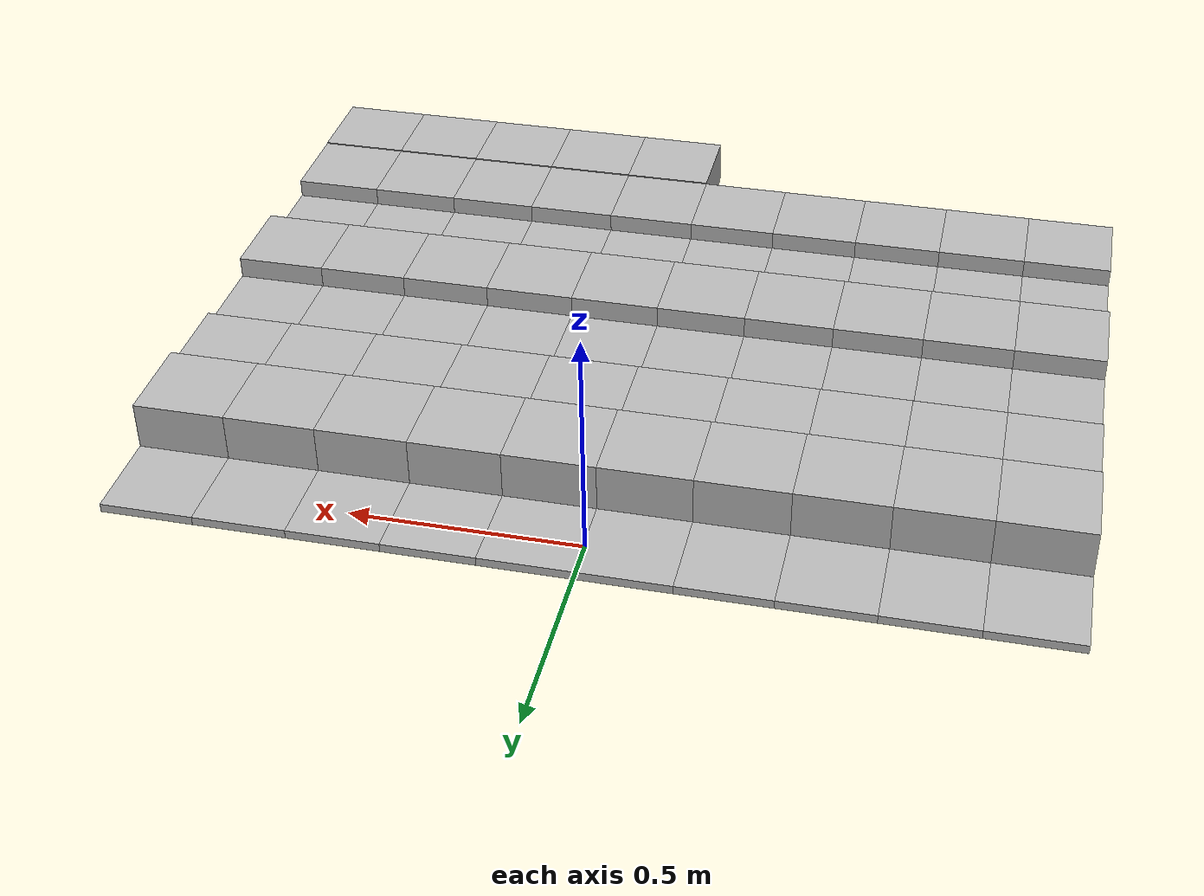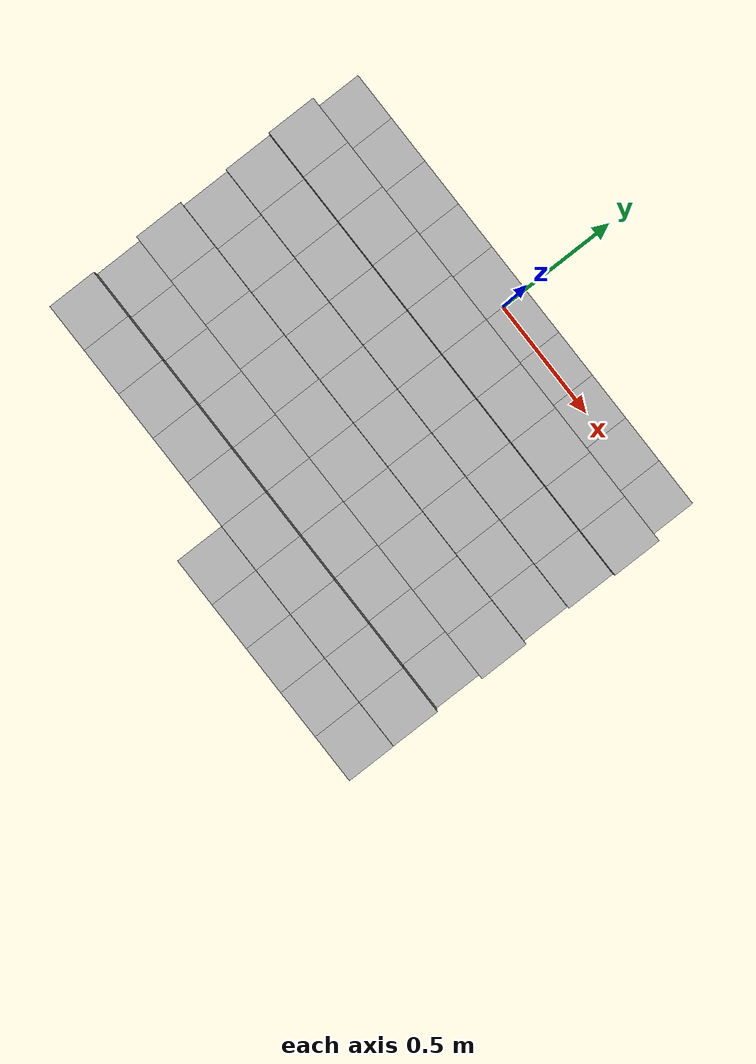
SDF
<sdf version="1.6">
 <model name="Terrain">
  <static>true</static>
  <link name="box_0_0">
   <pose>-0.9 0.0 0.00955770491962 0 0 0</pose>
   <inertial>
    <mass>1.0</mass>
    <inertia><ixx>0.0</ixx><ixy>0.0</ixy><ixz>0.0</ixz><iyy>0.0</iyy><iyz>0.0</iyz><izz>0.0</izz></inertia>
   </inertial>
   <collision name="collision"><geometry><box><size>0.2 0.2 0.0191154098392</size></box></geometry></collision>
   <visual name="visual"><geometry><box><size>0.2 0.2 0.0191154098392</size></box></geometry></visual>
  </link>
  <link name="box_0_1">
   <pose>-0.7 0.0 0.00955770491962 0 0 0</pose>
   <inertial>
    <mass>1.0</mass>
    <inertia><ixx>0.0</ixx><ixy>0.0</ixy><ixz>0.0</ixz><iyy>0.0</iyy><iyz>0.0</iyz><izz>0.0</izz></inertia>
   </inertial>
   <collision name="collision"><geometry><box><size>0.2 0.2 0.0191154098392</size></box></geometry></collision>
   <visual name="visual"><geometry><box><size>0.2 0.2 0.0191154098392</size></box></geometry></visual>
  </link>
  <link name="box_0_2">
   <pose>-0.5 0.0 0.00955770491962 0 0 0</pose>
   <inertial>
    <mass>1.0</mass>
    <inertia><ixx>0.0</ixx><ixy>0.0</ixy><ixz>0.0</ixz><iyy>0.0</iyy><iyz>0.0</iyz><izz>0.0</izz></inertia>
   </inertial>
   <collision name="collision"><geometry><box><size>0.2 0.2 0.0191154098392</size></box></geometry></collision>
   <visual name="visual"><geometry><box><size>0.2 0.2 0.0191154098392</size></box></geometry></visual>
  </link>
  <link name="box_0_3">
   <pose>-0.3 0.0 0.00955770491962 0 0 0</pose>
   <inertial>
    <mass>1.0</mass>
    <inertia><ixx>0.0</ixx><ixy>0.0</ixy><ixz>0.0</ixz><iyy>0.0</iyy><iyz>0.0</iyz><izz>0.0</izz></inertia>
   </inertial>
   <collision name="collision"><geometry><box><size>0.2 0.2 0.0191154098392</size></box></geometry></collision>
   <visual name="visual"><geometry><box><size>0.2 0.2 0.0191154098392</size></box></geometry></visual>
  </link>
  <link name="box_0_4">
   <pose>-0.1 0.0 0.00955770491962 0 0 0</pose>
   <inertial>
    <mass>1.0</mass>
    <inertia><ixx>0.0</ixx><ixy>0.0</ixy><ixz>0.0</ixz><iyy>0.0</iyy><iyz>0.0</iyz><izz>0.0</izz></inertia>
   </inertial>
   <collision name="collision"><geometry><box><size>0.2 0.2 0.0191154098392</size></box></geometry></collision>
   <visual name="visual"><geometry><box><size>0.2 0.2 0.0191154098392</size></box></geometry></visual>
  </link>
  <link name="box_0_5">
   <pose>0.1 0.0 0.00955770491962 0 0 0</pose>
   <inertial>
    <mass>1.0</mass>
    <inertia><ixx>0.0</ixx><ixy>0.0</ixy><ixz>0.0</ixz><iyy>0.0</iyy><iyz>0.0</iyz><izz>0.0</izz></inertia>
   </inertial>
   <collision name="collision"><geometry><box><size>0.2 0.2 0.0191154098392</size></box></geometry></collision>
   <visual name="visual"><geometry><box><size>0.2 0.2 0.0191154098392</size></box></geometry></visual>
  </link>
  <link name="box_0_6">
   <pose>0.3 0.0 0.00955770491962 0 0 0</pose>
   <inertial>
    <mass>1.0</mass>
    <inertia><ixx>0.0</ixx><ixy>0.0</ixy><ixz>0.0</ixz><iyy>0.0</iyy><iyz>0.0</iyz><izz>0.0</izz></inertia>
   </inertial>
   <collision name="collision"><geometry><box><size>0.2 0.2 0.0191154098392</size></box></geometry></collision>
   <visual name="visual"><geometry><box><size>0.2 0.2 0.0191154098392</size></box></geometry></visual>
  </link>
  <link name="box_0_7">
   <pose>0.5 0.0 0.00955770491962 0 0 0</pose>
   <inertial>
    <mass>1.0</mass>
    <inertia><ixx>0.0</ixx><ixy>0.0</ixy><ixz>0.0</ixz><iyy>0.0</iyy><iyz>0.0</iyz><izz>0.0</izz></inertia>
   </inertial>
   <collision name="collision"><geometry><box><size>0.2 0.2 0.0191154098392</size></box></geometry></collision>
   <visual name="visual"><geometry><box><size>0.2 0.2 0.0191154098392</size></box></geometry></visual>
  </link>
  <link name="box_0_8">
   <pose>0.7 0.0 0.00955770491962 0 0 0</pose>
   <inertial>
    <mass>1.0</mass>
    <inertia><ixx>0.0</ixx><ixy>0.0</ixy><ixz>0.0</ixz><iyy>0.0</iyy><iyz>0.0</iyz><izz>0.0</izz></inertia>
   </inertial>
   <collision name="collision"><geometry><box><size>0.2 0.2 0.0191154098392</size></box></geometry></collision>
   <visual name="visual"><geometry><box><size>0.2 0.2 0.0191154098392</size></box></geometry></visual>
  </link>
  <link name="box_0_9">
   <pose>0.9 0.0 0.00955770491962 0 0 0</pose>
   <inertial>
    <mass>1.0</mass>
    <inertia><ixx>0.0</ixx><ixy>0.0</ixy><ixz>0.0</ixz><iyy>0.0</iyy><iyz>0.0</iyz><izz>0.0</izz></inertia>
   </inertial>
   <collision name="collision"><geometry><box><size>0.2 0.2 0.0191154098392</size></box></geometry></collision>
   <visual name="visual"><geometry><box><size>0.2 0.2 0.0191154098392</size></box></geometry></visual>
  </link>
  <link name="box_1_0">
   <pose>-0.9 -0.2 0.0630464228378 0 0 0</pose>
   <inertial>
    <mass>1.0</mass>
    <inertia><ixx>0.0</ixx><ixy>0.0</ixy><ixz>0.0</ixz><iyy>0.0</iyy><iyz>0.0</iyz><izz>0.0</izz></inertia>
   </inertial>
   <collision name="collision"><geometry><box><size>0.2 0.2 0.126092845676</size></box></geometry></collision>
   <visual name="visual"><geometry><box><size>0.2 0.2 0.126092845676</size></box></geometry></visual>
  </link>
  <link name="box_1_1">
   <pose>-0.7 -0.2 0.0630464228378 0 0 0</pose>
   <inertial>
    <mass>1.0</mass>
    <inertia><ixx>0.0</ixx><ixy>0.0</ixy><ixz>0.0</ixz><iyy>0.0</iyy><iyz>0.0</iyz><izz>0.0</izz></inertia>
   </inertial>
   <collision name="collision"><geometry><box><size>0.2 0.2 0.126092845676</size></box></geometry></collision>
   <visual name="visual"><geometry><box><size>0.2 0.2 0.126092845676</size></box></geometry></visual>
  </link>
  <link name="box_1_2">
   <pose>-0.5 -0.2 0.0630464228378 0 0 0</pose>
   <inertial>
    <mass>1.0</mass>
    <inertia><ixx>0.0</ixx><ixy>0.0</ixy><ixz>0.0</ixz><iyy>0.0</iyy><iyz>0.0</iyz><izz>0.0</izz></inertia>
   </inertial>
   <collision name="collision"><geometry><box><size>0.2 0.2 0.126092845676</size></box></geometry></collision>
   <visual name="visual"><geometry><box><size>0.2 0.2 0.126092845676</size></box></geometry></visual>
  </link>
  <link name="box_1_3">
   <pose>-0.3 -0.2 0.0630464228378 0 0 0</pose>
   <inertial>
    <mass>1.0</mass>
    <inertia><ixx>0.0</ixx><ixy>0.0</ixy><ixz>0.0</ixz><iyy>0.0</iyy><iyz>0.0</iyz><izz>0.0</izz></inertia>
   </inertial>
   <collision name="collision"><geometry><box><size>0.2 0.2 0.126092845676</size></box></geometry></collision>
   <visual name="visual"><geometry><box><size>0.2 0.2 0.126092845676</size></box></geometry></visual>
  </link>
  <link name="box_1_4">
   <pose>-0.1 -0.2 0.0630464228378 0 0 0</pose>
   <inertial>
    <mass>1.0</mass>
    <inertia><ixx>0.0</ixx><ixy>0.0</ixy><ixz>0.0</ixz><iyy>0.0</iyy><iyz>0.0</iyz><izz>0.0</izz></inertia>
   </inertial>
   <collision name="collision"><geometry><box><size>0.2 0.2 0.126092845676</size></box></geometry></collision>
   <visual name="visual"><geometry><box><size>0.2 0.2 0.126092845676</size></box></geometry></visual>
  </link>
  <link name="box_1_5">
   <pose>0.1 -0.2 0.0630464228378 0 0 0</pose>
   <inertial>
    <mass>1.0</mass>
    <inertia><ixx>0.0</ixx><ixy>0.0</ixy><ixz>0.0</ixz><iyy>0.0</iyy><iyz>0.0</iyz><izz>0.0</izz></inertia>
   </inertial>
   <collision name="collision"><geometry><box><size>0.2 0.2 0.126092845676</size></box></geometry></collision>
   <visual name="visual"><geometry><box><size>0.2 0.2 0.126092845676</size></box></geometry></visual>
  </link>
  <link name="box_1_6">
   <pose>0.3 -0.2 0.0630464228378 0 0 0</pose>
   <inertial>
    <mass>1.0</mass>
    <inertia><ixx>0.0</ixx><ixy>0.0</ixy><ixz>0.0</ixz><iyy>0.0</iyy><iyz>0.0</iyz><izz>0.0</izz></inertia>
   </inertial>
   <collision name="collision"><geometry><box><size>0.2 0.2 0.126092845676</size></box></geometry></collision>
   <visual name="visual"><geometry><box><size>0.2 0.2 0.126092845676</size></box></geometry></visual>
  </link>
  <link name="box_1_7">
   <pose>0.5 -0.2 0.0630464228378 0 0 0</pose>
   <inertial>
    <mass>1.0</mass>
    <inertia><ixx>0.0</ixx><ixy>0.0</ixy><ixz>0.0</ixz><iyy>0.0</iyy><iyz>0.0</iyz><izz>0.0</izz></inertia>
   </inertial>
   <collision name="collision"><geometry><box><size>0.2 0.2 0.126092845676</size></box></geometry></collision>
   <visual name="visual"><geometry><box><size>0.2 0.2 0.126092845676</size></box></geometry></visual>
  </link>
  <link name="box_1_8">
   <pose>0.7 -0.2 0.0630464228378 0 0 0</pose>
   <inertial>
    <mass>1.0</mass>
    <inertia><ixx>0.0</ixx><ixy>0.0</ixy><ixz>0.0</ixz><iyy>0.0</iyy><iyz>0.0</iyz><izz>0.0</izz></inertia>
   </inertial>
   <collision name="collision"><geometry><box><size>0.2 0.2 0.126092845676</size></box></geometry></collision>
   <visual name="visual"><geometry><box><size>0.2 0.2 0.126092845676</size></box></geometry></visual>
  </link>
  <link name="box_1_9">
   <pose>0.9 -0.2 0.0630464228378 0 0 0</pose>
   <inertial>
    <mass>1.0</mass>
    <inertia><ixx>0.0</ixx><ixy>0.0</ixy><ixz>0.0</ixz><iyy>0.0</iyy><iyz>0.0</iyz><izz>0.0</izz></inertia>
   </inertial>
   <collision name="collision"><geometry><box><size>0.2 0.2 0.126092845676</size></box></geometry></collision>
   <visual name="visual"><geometry><box><size>0.2 0.2 0.126092845676</size></box></geometry></visual>
  </link>
  <link name="box_2_0">
   <pose>-0.9 -0.4 0.0490942440489 0 0 0</pose>
   <inertial>
    <mass>1.0</mass>
    <inertia><ixx>0.0</ixx><ixy>0.0</ixy><ixz>0.0</ixz><iyy>0.0</iyy><iyz>0.0</iyz><izz>0.0</izz></inertia>
   </inertial>
   <collision name="collision"><geometry><box><size>0.2 0.2 0.0981884880977</size></box></geometry></collision>
   <visual name="visual"><geometry><box><size>0.2 0.2 0.0981884880977</size></box></geometry></visual>
  </link>
  <link name="box_2_1">
   <pose>-0.7 -0.4 0.0490942440489 0 0 0</pose>
   <inertial>
    <mass>1.0</mass>
    <inertia><ixx>0.0</ixx><ixy>0.0</ixy><ixz>0.0</ixz><iyy>0.0</iyy><iyz>0.0</iyz><izz>0.0</izz></inertia>
   </inertial>
   <collision name="collision"><geometry><box><size>0.2 0.2 0.0981884880977</size></box></geometry></collision>
   <visual name="visual"><geometry><box><size>0.2 0.2 0.0981884880977</size></box></geometry></visual>
  </link>
  <link name="box_2_2">
   <pose>-0.5 -0.4 0.0490942440489 0 0 0</pose>
   <inertial>
    <mass>1.0</mass>
    <inertia><ixx>0.0</ixx><ixy>0.0</ixy><ixz>0.0</ixz><iyy>0.0</iyy><iyz>0.0</iyz><izz>0.0</izz></inertia>
   </inertial>
   <collision name="collision"><geometry><box><size>0.2 0.2 0.0981884880977</size></box></geometry></collision>
   <visual name="visual"><geometry><box><size>0.2 0.2 0.0981884880977</size></box></geometry></visual>
  </link>
  <link name="box_2_3">
   <pose>-0.3 -0.4 0.0490942440489 0 0 0</pose>
   <inertial>
    <mass>1.0</mass>
    <inertia><ixx>0.0</ixx><ixy>0.0</ixy><ixz>0.0</ixz><iyy>0.0</iyy><iyz>0.0</iyz><izz>0.0</izz></inertia>
   </inertial>
   <collision name="collision"><geometry><box><size>0.2 0.2 0.0981884880977</size></box></geometry></collision>
   <visual name="visual"><geometry><box><size>0.2 0.2 0.0981884880977</size></box></geometry></visual>
  </link>
  <link name="box_2_4">
   <pose>-0.1 -0.4 0.0490942440489 0 0 0</pose>
   <inertial>
    <mass>1.0</mass>
    <inertia><ixx>0.0</ixx><ixy>0.0</ixy><ixz>0.0</ixz><iyy>0.0</iyy><iyz>0.0</iyz><izz>0.0</izz></inertia>
   </inertial>
   <collision name="collision"><geometry><box><size>0.2 0.2 0.0981884880977</size></box></geometry></collision>
   <visual name="visual"><geometry><box><size>0.2 0.2 0.0981884880977</size></box></geometry></visual>
  </link>
  <link name="box_2_5">
   <pose>0.1 -0.4 0.0490942440489 0 0 0</pose>
   <inertial>
    <mass>1.0</mass>
    <inertia><ixx>0.0</ixx><ixy>0.0</ixy><ixz>0.0</ixz><iyy>0.0</iyy><iyz>0.0</iyz><izz>0.0</izz></inertia>
   </inertial>
   <collision name="collision"><geometry><box><size>0.2 0.2 0.0981884880977</size></box></geometry></collision>
   <visual name="visual"><geometry><box><size>0.2 0.2 0.0981884880977</size></box></geometry></visual>
  </link>
  <link name="box_2_6">
   <pose>0.3 -0.4 0.0490942440489 0 0 0</pose>
   <inertial>
    <mass>1.0</mass>
    <inertia><ixx>0.0</ixx><ixy>0.0</ixy><ixz>0.0</ixz><iyy>0.0</iyy><iyz>0.0</iyz><izz>0.0</izz></inertia>
   </inertial>
   <collision name="collision"><geometry><box><size>0.2 0.2 0.0981884880977</size></box></geometry></collision>
   <visual name="visual"><geometry><box><size>0.2 0.2 0.0981884880977</size></box></geometry></visual>
  </link>
  <link name="box_2_7">
   <pose>0.5 -0.4 0.0490942440489 0 0 0</pose>
   <inertial>
    <mass>1.0</mass>
    <inertia><ixx>0.0</ixx><ixy>0.0</ixy><ixz>0.0</ixz><iyy>0.0</iyy><iyz>0.0</iyz><izz>0.0</izz></inertia>
   </inertial>
   <collision name="collision"><geometry><box><size>0.2 0.2 0.0981884880977</size></box></geometry></collision>
   <visual name="visual"><geometry><box><size>0.2 0.2 0.0981884880977</size></box></geometry></visual>
  </link>
  <link name="box_2_8">
   <pose>0.7 -0.4 0.0490942440489 0 0 0</pose>
   <inertial>
    <mass>1.0</mass>
    <inertia><ixx>0.0</ixx><ixy>0.0</ixy><ixz>0.0</ixz><iyy>0.0</iyy><iyz>0.0</iyz><izz>0.0</izz></inertia>
   </inertial>
   <collision name="collision"><geometry><box><size>0.2 0.2 0.0981884880977</size></box></geometry></collision>
   <visual name="visual"><geometry><box><size>0.2 0.2 0.0981884880977</size></box></geometry></visual>
  </link>
  <link name="box_2_9">
   <pose>0.9 -0.4 0.0490942440489 0 0 0</pose>
   <inertial>
    <mass>1.0</mass>
    <inertia><ixx>0.0</ixx><ixy>0.0</ixy><ixz>0.0</ixz><iyy>0.0</iyy><iyz>0.0</iyz><izz>0.0</izz></inertia>
   </inertial>
   <collision name="collision"><geometry><box><size>0.2 0.2 0.0981884880977</size></box></geometry></collision>
   <visual name="visual"><geometry><box><size>0.2 0.2 0.0981884880977</size></box></geometry></visual>
  </link>
  <link name="box_3_0">
   <pose>-0.9 -0.6 0.0361907637147 0 0 0</pose>
   <inertial>
    <mass>1.0</mass>
    <inertia><ixx>0.0</ixx><ixy>0.0</ixy><ixz>0.0</ixz><iyy>0.0</iyy><iyz>0.0</iyz><izz>0.0</izz></inertia>
   </inertial>
   <collision name="collision"><geometry><box><size>0.2 0.2 0.0723815274294</size></box></geometry></collision>
   <visual name="visual"><geometry><box><size>0.2 0.2 0.0723815274294</size></box></geometry></visual>
  </link>
  <link name="box_3_1">
   <pose>-0.7 -0.6 0.0361907637147 0 0 0</pose>
   <inertial>
    <mass>1.0</mass>
    <inertia><ixx>0.0</ixx><ixy>0.0</ixy><ixz>0.0</ixz><iyy>0.0</iyy><iyz>0.0</iyz><izz>0.0</izz></inertia>
   </inertial>
   <collision name="collision"><geometry><box><size>0.2 0.2 0.0723815274294</size></box></geometry></collision>
   <visual name="visual"><geometry><box><size>0.2 0.2 0.0723815274294</size></box></geometry></visual>
  </link>
  <link name="box_3_2">
   <pose>-0.5 -0.6 0.0361907637147 0 0 0</pose>
   <inertial>
    <mass>1.0</mass>
    <inertia><ixx>0.0</ixx><ixy>0.0</ixy><ixz>0.0</ixz><iyy>0.0</iyy><iyz>0.0</iyz><izz>0.0</izz></inertia>
   </inertial>
   <collision name="collision"><geometry><box><size>0.2 0.2 0.0723815274294</size></box></geometry></collision>
   <visual name="visual"><geometry><box><size>0.2 0.2 0.0723815274294</size></box></geometry></visual>
  </link>
  <link name="box_3_3">
   <pose>-0.3 -0.6 0.0361907637147 0 0 0</pose>
   <inertial>
    <mass>1.0</mass>
    <inertia><ixx>0.0</ixx><ixy>0.0</ixy><ixz>0.0</ixz><iyy>0.0</iyy><iyz>0.0</iyz><izz>0.0</izz></inertia>
   </inertial>
   <collision name="collision"><geometry><box><size>0.2 0.2 0.0723815274294</size></box></geometry></collision>
   <visual name="visual"><geometry><box><size>0.2 0.2 0.0723815274294</size></box></geometry></visual>
  </link>
  <link name="box_3_4">
   <pose>-0.1 -0.6 0.0361907637147 0 0 0</pose>
   <inertial>
    <mass>1.0</mass>
    <inertia><ixx>0.0</ixx><ixy>0.0</ixy><ixz>0.0</ixz><iyy>0.0</iyy><iyz>0.0</iyz><izz>0.0</izz></inertia>
   </inertial>
   <collision name="collision"><geometry><box><size>0.2 0.2 0.0723815274294</size></box></geometry></collision>
   <visual name="visual"><geometry><box><size>0.2 0.2 0.0723815274294</size></box></geometry></visual>
  </link>
  <link name="box_3_5">
   <pose>0.1 -0.6 0.0361907637147 0 0 0</pose>
   <inertial>
    <mass>1.0</mass>
    <inertia><ixx>0.0</ixx><ixy>0.0</ixy><ixz>0.0</ixz><iyy>0.0</iyy><iyz>0.0</iyz><izz>0.0</izz></inertia>
   </inertial>
   <collision name="collision"><geometry><box><size>0.2 0.2 0.0723815274294</size></box></geometry></collision>
   <visual name="visual"><geometry><box><size>0.2 0.2 0.0723815274294</size></box></geometry></visual>
  </link>
  <link name="box_3_6">
   <pose>0.3 -0.6 0.0361907637147 0 0 0</pose>
   <inertial>
    <mass>1.0</mass>
    <inertia><ixx>0.0</ixx><ixy>0.0</ixy><ixz>0.0</ixz><iyy>0.0</iyy><iyz>0.0</iyz><izz>0.0</izz></inertia>
   </inertial>
   <collision name="collision"><geometry><box><size>0.2 0.2 0.0723815274294</size></box></geometry></collision>
   <visual name="visual"><geometry><box><size>0.2 0.2 0.0723815274294</size></box></geometry></visual>
  </link>
  <link name="box_3_7">
   <pose>0.5 -0.6 0.0361907637147 0 0 0</pose>
   <inertial>
    <mass>1.0</mass>
    <inertia><ixx>0.0</ixx><ixy>0.0</ixy><ixz>0.0</ixz><iyy>0.0</iyy><iyz>0.0</iyz><izz>0.0</izz></inertia>
   </inertial>
   <collision name="collision"><geometry><box><size>0.2 0.2 0.0723815274294</size></box></geometry></collision>
   <visual name="visual"><geometry><box><size>0.2 0.2 0.0723815274294</size></box></geometry></visual>
  </link>
  <link name="box_3_8">
   <pose>0.7 -0.6 0.0361907637147 0 0 0</pose>
   <inertial>
    <mass>1.0</mass>
    <inertia><ixx>0.0</ixx><ixy>0.0</ixy><ixz>0.0</ixz><iyy>0.0</iyy><iyz>0.0</iyz><izz>0.0</izz></inertia>
   </inertial>
   <collision name="collision"><geometry><box><size>0.2 0.2 0.0723815274294</size></box></geometry></collision>
   <visual name="visual"><geometry><box><size>0.2 0.2 0.0723815274294</size></box></geometry></visual>
  </link>
  <link name="box_3_9">
   <pose>0.9 -0.6 0.0361907637147 0 0 0</pose>
   <inertial>
    <mass>1.0</mass>
    <inertia><ixx>0.0</ixx><ixy>0.0</ixy><ixz>0.0</ixz><iyy>0.0</iyy><iyz>0.0</iyz><izz>0.0</izz></inertia>
   </inertial>
   <collision name="collision"><geometry><box><size>0.2 0.2 0.0723815274294</size></box></geometry></collision>
   <visual name="visual"><geometry><box><size>0.2 0.2 0.0723815274294</size></box></geometry></visual>
  </link>
  <link name="box_4_0">
   <pose>-0.9 -0.8 0.0605252024898 0 0 0</pose>
   <inertial>
    <mass>1.0</mass>
    <inertia><ixx>0.0</ixx><ixy>0.0</ixy><ixz>0.0</ixz><iyy>0.0</iyy><iyz>0.0</iyz><izz>0.0</izz></inertia>
   </inertial>
   <collision name="collision"><geometry><box><size>0.2 0.2 0.12105040498</size></box></geometry></collision>
   <visual name="visual"><geometry><box><size>0.2 0.2 0.12105040498</size></box></geometry></visual>
  </link>
  <link name="box_4_1">
   <pose>-0.7 -0.8 0.0605252024898 0 0 0</pose>
   <inertial>
    <mass>1.0</mass>
    <inertia><ixx>0.0</ixx><ixy>0.0</ixy><ixz>0.0</ixz><iyy>0.0</iyy><iyz>0.0</iyz><izz>0.0</izz></inertia>
   </inertial>
   <collision name="collision"><geometry><box><size>0.2 0.2 0.12105040498</size></box></geometry></collision>
   <visual name="visual"><geometry><box><size>0.2 0.2 0.12105040498</size></box></geometry></visual>
  </link>
  <link name="box_4_2">
   <pose>-0.5 -0.8 0.0605252024898 0 0 0</pose>
   <inertial>
    <mass>1.0</mass>
    <inertia><ixx>0.0</ixx><ixy>0.0</ixy><ixz>0.0</ixz><iyy>0.0</iyy><iyz>0.0</iyz><izz>0.0</izz></inertia>
   </inertial>
   <collision name="collision"><geometry><box><size>0.2 0.2 0.12105040498</size></box></geometry></collision>
   <visual name="visual"><geometry><box><size>0.2 0.2 0.12105040498</size></box></geometry></visual>
  </link>
  <link name="box_4_3">
   <pose>-0.3 -0.8 0.0605252024898 0 0 0</pose>
   <inertial>
    <mass>1.0</mass>
    <inertia><ixx>0.0</ixx><ixy>0.0</ixy><ixz>0.0</ixz><iyy>0.0</iyy><iyz>0.0</iyz><izz>0.0</izz></inertia>
   </inertial>
   <collision name="collision"><geometry><box><size>0.2 0.2 0.12105040498</size></box></geometry></collision>
   <visual name="visual"><geometry><box><size>0.2 0.2 0.12105040498</size></box></geometry></visual>
  </link>
  <link name="box_4_4">
   <pose>-0.1 -0.8 0.0605252024898 0 0 0</pose>
   <inertial>
    <mass>1.0</mass>
    <inertia><ixx>0.0</ixx><ixy>0.0</ixy><ixz>0.0</ixz><iyy>0.0</iyy><iyz>0.0</iyz><izz>0.0</izz></inertia>
   </inertial>
   <collision name="collision"><geometry><box><size>0.2 0.2 0.12105040498</size></box></geometry></collision>
   <visual name="visual"><geometry><box><size>0.2 0.2 0.12105040498</size></box></geometry></visual>
  </link>
  <link name="box_4_5">
   <pose>0.1 -0.8 0.0605252024898 0 0 0</pose>
   <inertial>
    <mass>1.0</mass>
    <inertia><ixx>0.0</ixx><ixy>0.0</ixy><ixz>0.0</ixz><iyy>0.0</iyy><iyz>0.0</iyz><izz>0.0</izz></inertia>
   </inertial>
   <collision name="collision"><geometry><box><size>0.2 0.2 0.12105040498</size></box></geometry></collision>
   <visual name="visual"><geometry><box><size>0.2 0.2 0.12105040498</size></box></geometry></visual>
  </link>
  <link name="box_4_6">
   <pose>0.3 -0.8 0.0605252024898 0 0 0</pose>
   <inertial>
    <mass>1.0</mass>
    <inertia><ixx>0.0</ixx><ixy>0.0</ixy><ixz>0.0</ixz><iyy>0.0</iyy><iyz>0.0</iyz><izz>0.0</izz></inertia>
   </inertial>
   <collision name="collision"><geometry><box><size>0.2 0.2 0.12105040498</size></box></geometry></collision>
   <visual name="visual"><geometry><box><size>0.2 0.2 0.12105040498</size></box></geometry></visual>
  </link>
  <link name="box_4_7">
   <pose>0.5 -0.8 0.0605252024898 0 0 0</pose>
   <inertial>
    <mass>1.0</mass>
    <inertia><ixx>0.0</ixx><ixy>0.0</ixy><ixz>0.0</ixz><iyy>0.0</iyy><iyz>0.0</iyz><izz>0.0</izz></inertia>
   </inertial>
   <collision name="collision"><geometry><box><size>0.2 0.2 0.12105040498</size></box></geometry></collision>
   <visual name="visual"><geometry><box><size>0.2 0.2 0.12105040498</size></box></geometry></visual>
  </link>
  <link name="box_4_8">
   <pose>0.7 -0.8 0.0605252024898 0 0 0</pose>
   <inertial>
    <mass>1.0</mass>
    <inertia><ixx>0.0</ixx><ixy>0.0</ixy><ixz>0.0</ixz><iyy>0.0</iyy><iyz>0.0</iyz><izz>0.0</izz></inertia>
   </inertial>
   <collision name="collision"><geometry><box><size>0.2 0.2 0.12105040498</size></box></geometry></collision>
   <visual name="visual"><geometry><box><size>0.2 0.2 0.12105040498</size></box></geometry></visual>
  </link>
  <link name="box_4_9">
   <pose>0.9 -0.8 0.0605252024898 0 0 0</pose>
   <inertial>
    <mass>1.0</mass>
    <inertia><ixx>0.0</ixx><ixy>0.0</ixy><ixz>0.0</ixz><iyy>0.0</iyy><iyz>0.0</iyz><izz>0.0</izz></inertia>
   </inertial>
   <collision name="collision"><geometry><box><size>0.2 0.2 0.12105040498</size></box></geometry></collision>
   <visual name="visual"><geometry><box><size>0.2 0.2 0.12105040498</size></box></geometry></visual>
  </link>
  <link name="box_5_0">
   <pose>-0.9 -1.0 0.031677377558 0 0 0</pose>
   <inertial>
    <mass>1.0</mass>
    <inertia><ixx>0.0</ixx><ixy>0.0</ixy><ixz>0.0</ixz><iyy>0.0</iyy><iyz>0.0</iyz><izz>0.0</izz></inertia>
   </inertial>
   <collision name="collision"><geometry><box><size>0.2 0.2 0.0633547551159</size></box></geometry></collision>
   <visual name="visual"><geometry><box><size>0.2 0.2 0.0633547551159</size></box></geometry></visual>
  </link>
  <link name="box_5_1">
   <pose>-0.7 -1.0 0.031677377558 0 0 0</pose>
   <inertial>
    <mass>1.0</mass>
    <inertia><ixx>0.0</ixx><ixy>0.0</ixy><ixz>0.0</ixz><iyy>0.0</iyy><iyz>0.0</iyz><izz>0.0</izz></inertia>
   </inertial>
   <collision name="collision"><geometry><box><size>0.2 0.2 0.0633547551159</size></box></geometry></collision>
   <visual name="visual"><geometry><box><size>0.2 0.2 0.0633547551159</size></box></geometry></visual>
  </link>
  <link name="box_5_2">
   <pose>-0.5 -1.0 0.031677377558 0 0 0</pose>
   <inertial>
    <mass>1.0</mass>
    <inertia><ixx>0.0</ixx><ixy>0.0</ixy><ixz>0.0</ixz><iyy>0.0</iyy><iyz>0.0</iyz><izz>0.0</izz></inertia>
   </inertial>
   <collision name="collision"><geometry><box><size>0.2 0.2 0.0633547551159</size></box></geometry></collision>
   <visual name="visual"><geometry><box><size>0.2 0.2 0.0633547551159</size></box></geometry></visual>
  </link>
  <link name="box_5_3">
   <pose>-0.3 -1.0 0.031677377558 0 0 0</pose>
   <inertial>
    <mass>1.0</mass>
    <inertia><ixx>0.0</ixx><ixy>0.0</ixy><ixz>0.0</ixz><iyy>0.0</iyy><iyz>0.0</iyz><izz>0.0</izz></inertia>
   </inertial>
   <collision name="collision"><geometry><box><size>0.2 0.2 0.0633547551159</size></box></geometry></collision>
   <visual name="visual"><geometry><box><size>0.2 0.2 0.0633547551159</size></box></geometry></visual>
  </link>
  <link name="box_5_4">
   <pose>-0.1 -1.0 0.031677377558 0 0 0</pose>
   <inertial>
    <mass>1.0</mass>
    <inertia><ixx>0.0</ixx><ixy>0.0</ixy><ixz>0.0</ixz><iyy>0.0</iyy><iyz>0.0</iyz><izz>0.0</izz></inertia>
   </inertial>
   <collision name="collision"><geometry><box><size>0.2 0.2 0.0633547551159</size></box></geometry></collision>
   <visual name="visual"><geometry><box><size>0.2 0.2 0.0633547551159</size></box></geometry></visual>
  </link>
  <link name="box_5_5">
   <pose>0.1 -1.0 0.031677377558 0 0 0</pose>
   <inertial>
    <mass>1.0</mass>
    <inertia><ixx>0.0</ixx><ixy>0.0</ixy><ixz>0.0</ixz><iyy>0.0</iyy><iyz>0.0</iyz><izz>0.0</izz></inertia>
   </inertial>
   <collision name="collision"><geometry><box><size>0.2 0.2 0.0633547551159</size></box></geometry></collision>
   <visual name="visual"><geometry><box><size>0.2 0.2 0.0633547551159</size></box></geometry></visual>
  </link>
  <link name="box_5_6">
   <pose>0.3 -1.0 0.031677377558 0 0 0</pose>
   <inertial>
    <mass>1.0</mass>
    <inertia><ixx>0.0</ixx><ixy>0.0</ixy><ixz>0.0</ixz><iyy>0.0</iyy><iyz>0.0</iyz><izz>0.0</izz></inertia>
   </inertial>
   <collision name="collision"><geometry><box><size>0.2 0.2 0.0633547551159</size></box></geometry></collision>
   <visual name="visual"><geometry><box><size>0.2 0.2 0.0633547551159</size></box></geometry></visual>
  </link>
  <link name="box_5_7">
   <pose>0.5 -1.0 0.031677377558 0 0 0</pose>
   <inertial>
    <mass>1.0</mass>
    <inertia><ixx>0.0</ixx><ixy>0.0</ixy><ixz>0.0</ixz><iyy>0.0</iyy><iyz>0.0</iyz><izz>0.0</izz></inertia>
   </inertial>
   <collision name="collision"><geometry><box><size>0.2 0.2 0.0633547551159</size></box></geometry></collision>
   <visual name="visual"><geometry><box><size>0.2 0.2 0.0633547551159</size></box></geometry></visual>
  </link>
  <link name="box_5_8">
   <pose>0.7 -1.0 0.031677377558 0 0 0</pose>
   <inertial>
    <mass>1.0</mass>
    <inertia><ixx>0.0</ixx><ixy>0.0</ixy><ixz>0.0</ixz><iyy>0.0</iyy><iyz>0.0</iyz><izz>0.0</izz></inertia>
   </inertial>
   <collision name="collision"><geometry><box><size>0.2 0.2 0.0633547551159</size></box></geometry></collision>
   <visual name="visual"><geometry><box><size>0.2 0.2 0.0633547551159</size></box></geometry></visual>
  </link>
  <link name="box_5_9">
   <pose>0.9 -1.0 0.031677377558 0 0 0</pose>
   <inertial>
    <mass>1.0</mass>
    <inertia><ixx>0.0</ixx><ixy>0.0</ixy><ixz>0.0</ixz><iyy>0.0</iyy><iyz>0.0</iyz><izz>0.0</izz></inertia>
   </inertial>
   <collision name="collision"><geometry><box><size>0.2 0.2 0.0633547551159</size></box></geometry></collision>
   <visual name="visual"><geometry><box><size>0.2 0.2 0.0633547551159</size></box></geometry></visual>
  </link>
  <link name="box_6_0">
   <pose>-0.9 -1.2 0.0522590830037 0 0 0</pose>
   <inertial>
    <mass>1.0</mass>
    <inertia><ixx>0.0</ixx><ixy>0.0</ixy><ixz>0.0</ixz><iyy>0.0</iyy><iyz>0.0</iyz><izz>0.0</izz></inertia>
   </inertial>
   <collision name="collision"><geometry><box><size>0.2 0.2 0.104518166007</size></box></geometry></collision>
   <visual name="visual"><geometry><box><size>0.2 0.2 0.104518166007</size></box></geometry></visual>
  </link>
  <link name="box_6_1">
   <pose>-0.7 -1.2 0.0522590830037 0 0 0</pose>
   <inertial>
    <mass>1.0</mass>
    <inertia><ixx>0.0</ixx><ixy>0.0</ixy><ixz>0.0</ixz><iyy>0.0</iyy><iyz>0.0</iyz><izz>0.0</izz></inertia>
   </inertial>
   <collision name="collision"><geometry><box><size>0.2 0.2 0.104518166007</size></box></geometry></collision>
   <visual name="visual"><geometry><box><size>0.2 0.2 0.104518166007</size></box></geometry></visual>
  </link>
  <link name="box_6_2">
   <pose>-0.5 -1.2 0.0522590830037 0 0 0</pose>
   <inertial>
    <mass>1.0</mass>
    <inertia><ixx>0.0</ixx><ixy>0.0</ixy><ixz>0.0</ixz><iyy>0.0</iyy><iyz>0.0</iyz><izz>0.0</izz></inertia>
   </inertial>
   <collision name="collision"><geometry><box><size>0.2 0.2 0.104518166007</size></box></geometry></collision>
   <visual name="visual"><geometry><box><size>0.2 0.2 0.104518166007</size></box></geometry></visual>
  </link>
  <link name="box_6_3">
   <pose>-0.3 -1.2 0.0522590830037 0 0 0</pose>
   <inertial>
    <mass>1.0</mass>
    <inertia><ixx>0.0</ixx><ixy>0.0</ixy><ixz>0.0</ixz><iyy>0.0</iyy><iyz>0.0</iyz><izz>0.0</izz></inertia>
   </inertial>
   <collision name="collision"><geometry><box><size>0.2 0.2 0.104518166007</size></box></geometry></collision>
   <visual name="visual"><geometry><box><size>0.2 0.2 0.104518166007</size></box></geometry></visual>
  </link>
  <link name="box_6_4">
   <pose>-0.1 -1.2 0.0522590830037 0 0 0</pose>
   <inertial>
    <mass>1.0</mass>
    <inertia><ixx>0.0</ixx><ixy>0.0</ixy><ixz>0.0</ixz><iyy>0.0</iyy><iyz>0.0</iyz><izz>0.0</izz></inertia>
   </inertial>
   <collision name="collision"><geometry><box><size>0.2 0.2 0.104518166007</size></box></geometry></collision>
   <visual name="visual"><geometry><box><size>0.2 0.2 0.104518166007</size></box></geometry></visual>
  </link>
  <link name="box_6_5">
   <pose>0.1 -1.2 0.0522590830037 0 0 0</pose>
   <inertial>
    <mass>1.0</mass>
    <inertia><ixx>0.0</ixx><ixy>0.0</ixy><ixz>0.0</ixz><iyy>0.0</iyy><iyz>0.0</iyz><izz>0.0</izz></inertia>
   </inertial>
   <collision name="collision"><geometry><box><size>0.2 0.2 0.104518166007</size></box></geometry></collision>
   <visual name="visual"><geometry><box><size>0.2 0.2 0.104518166007</size></box></geometry></visual>
  </link>
  <link name="box_6_6">
   <pose>0.3 -1.2 0.0522590830037 0 0 0</pose>
   <inertial>
    <mass>1.0</mass>
    <inertia><ixx>0.0</ixx><ixy>0.0</ixy><ixz>0.0</ixz><iyy>0.0</iyy><iyz>0.0</iyz><izz>0.0</izz></inertia>
   </inertial>
   <collision name="collision"><geometry><box><size>0.2 0.2 0.104518166007</size></box></geometry></collision>
   <visual name="visual"><geometry><box><size>0.2 0.2 0.104518166007</size></box></geometry></visual>
  </link>
  <link name="box_6_7">
   <pose>0.5 -1.2 0.0522590830037 0 0 0</pose>
   <inertial>
    <mass>1.0</mass>
    <inertia><ixx>0.0</ixx><ixy>0.0</ixy><ixz>0.0</ixz><iyy>0.0</iyy><iyz>0.0</iyz><izz>0.0</izz></inertia>
   </inertial>
   <collision name="collision"><geometry><box><size>0.2 0.2 0.104518166007</size></box></geometry></collision>
   <visual name="visual"><geometry><box><size>0.2 0.2 0.104518166007</size></box></geometry></visual>
  </link>
  <link name="box_6_8">
   <pose>0.7 -1.2 0.0522590830037 0 0 0</pose>
   <inertial>
    <mass>1.0</mass>
    <inertia><ixx>0.0</ixx><ixy>0.0</ixy><ixz>0.0</ixz><iyy>0.0</iyy><iyz>0.0</iyz><izz>0.0</izz></inertia>
   </inertial>
   <collision name="collision"><geometry><box><size>0.2 0.2 0.104518166007</size></box></geometry></collision>
   <visual name="visual"><geometry><box><size>0.2 0.2 0.104518166007</size></box></geometry></visual>
  </link>
  <link name="box_6_9">
   <pose>0.9 -1.2 0.0522590830037 0 0 0</pose>
   <inertial>
    <mass>1.0</mass>
    <inertia><ixx>0.0</ixx><ixy>0.0</ixy><ixz>0.0</ixz><iyy>0.0</iyy><iyz>0.0</iyz><izz>0.0</izz></inertia>
   </inertial>
   <collision name="collision"><geometry><box><size>0.2 0.2 0.104518166007</size></box></geometry></collision>
   <visual name="visual"><geometry><box><size>0.2 0.2 0.104518166007</size></box></geometry></visual>
  </link>
  <link name="box_7_5">
   <pose>0.1 -1.4 0.0535483578431 0 0 0</pose>
   <inertial>
    <mass>1.0</mass>
    <inertia><ixx>0.0</ixx><ixy>0.0</ixy><ixz>0.0</ixz><iyy>0.0</iyy><iyz>0.0</iyz><izz>0.0</izz></inertia>
   </inertial>
   <collision name="collision"><geometry><box><size>0.2 0.2 0.107096715686</size></box></geometry></collision>
   <visual name="visual"><geometry><box><size>0.2 0.2 0.107096715686</size></box></geometry></visual>
  </link>
  <link name="box_7_6">
   <pose>0.3 -1.4 0.0535483578431 0 0 0</pose>
   <inertial>
    <mass>1.0</mass>
    <inertia><ixx>0.0</ixx><ixy>0.0</ixy><ixz>0.0</ixz><iyy>0.0</iyy><iyz>0.0</iyz><izz>0.0</izz></inertia>
   </inertial>
   <collision name="collision"><geometry><box><size>0.2 0.2 0.107096715686</size></box></geometry></collision>
   <visual name="visual"><geometry><box><size>0.2 0.2 0.107096715686</size></box></geometry></visual>
  </link>
  <link name="box_7_7">
   <pose>0.5 -1.4 0.0535483578431 0 0 0</pose>
   <inertial>
    <mass>1.0</mass>
    <inertia><ixx>0.0</ixx><ixy>0.0</ixy><ixz>0.0</ixz><iyy>0.0</iyy><iyz>0.0</iyz><izz>0.0</izz></inertia>
   </inertial>
   <collision name="collision"><geometry><box><size>0.2 0.2 0.107096715686</size></box></geometry></collision>
   <visual name="visual"><geometry><box><size>0.2 0.2 0.107096715686</size></box></geometry></visual>
  </link>
  <link name="box_7_8">
   <pose>0.7 -1.4 0.0535483578431 0 0 0</pose>
   <inertial>
    <mass>1.0</mass>
    <inertia><ixx>0.0</ixx><ixy>0.0</ixy><ixz>0.0</ixz><iyy>0.0</iyy><iyz>0.0</iyz><izz>0.0</izz></inertia>
   </inertial>
   <collision name="collision"><geometry><box><size>0.2 0.2 0.107096715686</size></box></geometry></collision>
   <visual name="visual"><geometry><box><size>0.2 0.2 0.107096715686</size></box></geometry></visual>
  </link>
  <link name="box_7_9">
   <pose>0.9 -1.4 0.0535483578431 0 0 0</pose>
   <inertial>
    <mass>1.0</mass>
    <inertia><ixx>0.0</ixx><ixy>0.0</ixy><ixz>0.0</ixz><iyy>0.0</iyy><iyz>0.0</iyz><izz>0.0</izz></inertia>
   </inertial>
   <collision name="collision"><geometry><box><size>0.2 0.2 0.107096715686</size></box></geometry></collision>
   <visual name="visual"><geometry><box><size>0.2 0.2 0.107096715686</size></box></geometry></visual>
  </link>
 </model>
</sdf>
